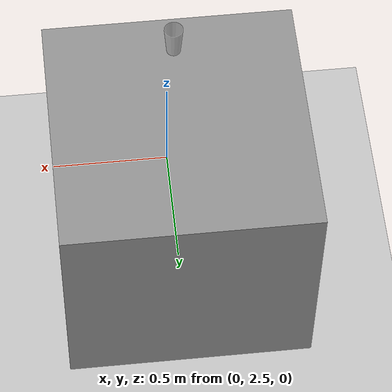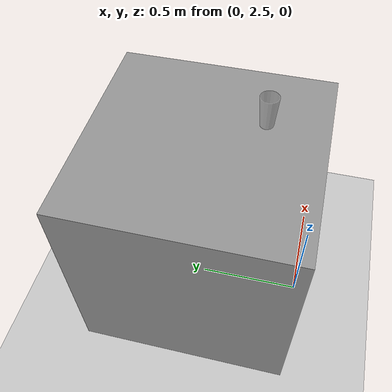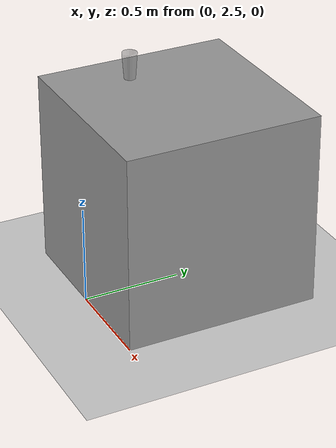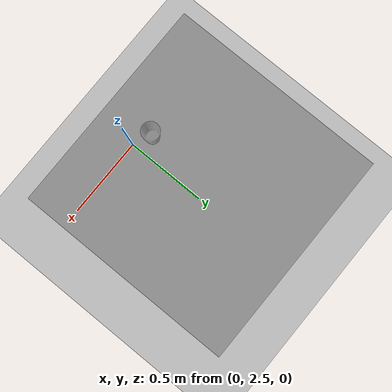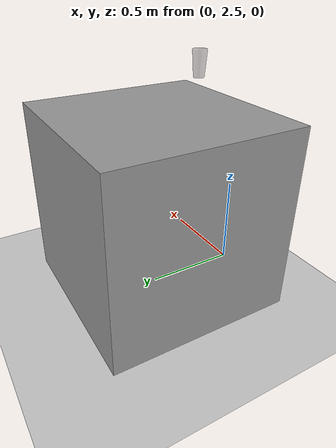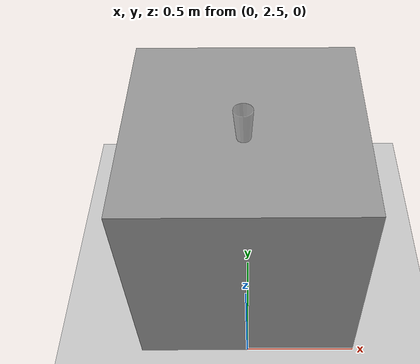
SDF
<sdf version="1.7">
 <world name="default">
  <light name="sun" type="directional">
   <pose>0 0 10 0 -0 0</pose>
   <diffuse>0.8 0.8 0.8 1</diffuse>
   <specular>0.2 0.2 0.2 1</specular>
   <attenuation>
    <range>1000</range>
    <constant>0.9</constant>
    <linear>0.01</linear>
    <quadratic>0.001</quadratic>
   </attenuation>
   <direction>-0.5 0.1 -0.9</direction>
   <spot><inner_angle>0</inner_angle><outer_angle>0</outer_angle><falloff>0</falloff></spot>
  </light>
  <model name="ground_plane">
   <static>1</static>
   <link name="link">
    <collision name="collision">
     <geometry><plane><normal>0 0 1</normal><size>100 100</size></plane></geometry>
     <surface>
      <contact><collide_bitmask>65535</collide_bitmask></contact>
      <friction><ode><mu>100</mu><mu2>50</mu2></ode></friction>
     </surface>
    </collision>
    <visual name="visual">
     <cast_shadows>0</cast_shadows>
     <geometry><plane><normal>0 0 1</normal><size>100 100</size></plane></geometry>
     <material>
      <script><uri>file://media/materials/scripts/gazebo.material</uri><name>Gazebo/Grey</name></script>
     </material>
    </visual>
   </link>
  </model>
  <gravity>0 0 -9.8</gravity>
  <magnetic_field>6e-06 2.3e-05 -4.2e-05</magnetic_field>
  <atmosphere type="adiabatic"/>
  <physics type="ode">
   <max_step_size>0.001</max_step_size>
   <real_time_factor>1</real_time_factor>
   <real_time_update_rate>1000</real_time_update_rate>
  </physics>
  <scene><ambient>0.4 0.4 0.4 1</ambient><background>0.7 0.7 0.7 1</background><shadows>1</shadows></scene>
  <spherical_coordinates>
   <surface_model>EARTH_WGS84</surface_model>
   <latitude_deg>0</latitude_deg>
   <longitude_deg>0</longitude_deg>
   <elevation>0</elevation>
   <heading_deg>0</heading_deg>
  </spherical_coordinates>
  <model name="unit_box">
   <link name="link">
    <inertial>
     <mass>1</mass>
     <inertia>
      <ixx>0.166667</ixx>
      <ixy>0</ixy>
      <ixz>0</ixz>
      <iyy>0.166667</iyy>
      <iyz>0</iyz>
      <izz>0.166667</izz>
     </inertia>
    </inertial>
    <visual name="visual">
     <geometry><box><size>1 1 1</size></box></geometry>
     <material>
      <script><name>Gazebo/Grey</name><uri>file://media/materials/scripts/gazebo.material</uri></script>
      <shader type="pixel"/>
     </material>
    </visual>
    <collision name="collision">
     <geometry><box><size>1 1 1</size></box></geometry>
     <surface>
      <friction>
       <ode><mu>1</mu><mu2>1</mu2><fdir1>0 0 0</fdir1><slip1>0</slip1><slip2>0</slip2></ode>
       <torsional>
        <coefficient>1</coefficient>
        <patch_radius>0</patch_radius>
        <surface_radius>0</surface_radius>
        <use_patch_radius>1</use_patch_radius>
        <ode><slip>0</slip></ode>
       </torsional>
      </friction>
      <bounce><restitution_coefficient>0</restitution_coefficient><threshold>1e+06</threshold></bounce>
      <contact>
       <collide_without_contact>0</collide_without_contact>
       <collide_without_contact_bitmask>1</collide_without_contact_bitmask>
       <collide_bitmask>1</collide_bitmask>
       <ode>
        <soft_cfm>0</soft_cfm>
        <soft_erp>0.2</soft_erp>
        <kp>1e+13</kp>
        <kd>1</kd>
        <max_vel>0.01</max_vel>
        <min_depth>0</min_depth>
       </ode>
       <bullet>
        <split_impulse>1</split_impulse>
        <split_impulse_penetration_threshold>-0.01</split_impulse_penetration_threshold>
        <soft_cfm>0</soft_cfm>
        <soft_erp>0.2</soft_erp>
        <kp>1e+13</kp>
        <kd>1</kd>
       </bullet>
      </contact>
     </surface>
    </collision>
   </link>
   <static>1</static>
   <pose>0 3 0.499995 1e-05 -0 0</pose>
  </model>
  <model name="plastic_cup">
   <link name="link">
    <pose>0 0 0.065 0 -0 0</pose>
    <inertial>
     <mass>0.0599</mass>
     <inertia>
      <ixx>0.000302896</ixx>
      <ixy>0</ixy>
      <ixz>0</ixz>
      <iyy>0.000302896</iyy>
      <iyz>0</iyz>
      <izz>3.28764e-05</izz>
     </inertia>
    </inertial>
    <collision name="collision">
     <geometry><mesh><uri>model://plastic_cup/meshes/plastic_cup.dae</uri></mesh></geometry>
     <surface>
      <contact>
       <poissons_ratio>0.35</poissons_ratio>
       <elastic_modulus>3.10264e+09</elastic_modulus>
       <ode><kp>100000</kp><kd>100</kd><max_vel>100</max_vel><min_depth>0.001</min_depth></ode>
      </contact>
      <friction>
       <torsional>
        <coefficient>1</coefficient>
        <use_patch_radius>0</use_patch_radius>
        <surface_radius>0.01</surface_radius>
       </torsional>
      </friction>
     </surface>
    </collision>
    <visual name="visual">
     <geometry><mesh><uri>model://plastic_cup/meshes/plastic_cup.dae</uri></mesh></geometry>
     <material>
      <script><uri>file://media/materials/scripts/gazebo.material</uri><name>Gazebo/GreyTransparent</name></script>
     </material>
    </visual>
   </link>
   <pose>0 2.75 1.15 0 -0 0</pose>
  </model>
 </world>
</sdf>
